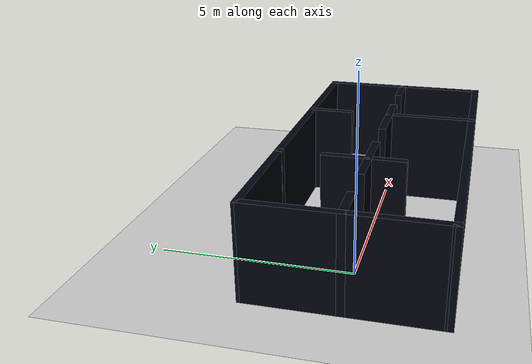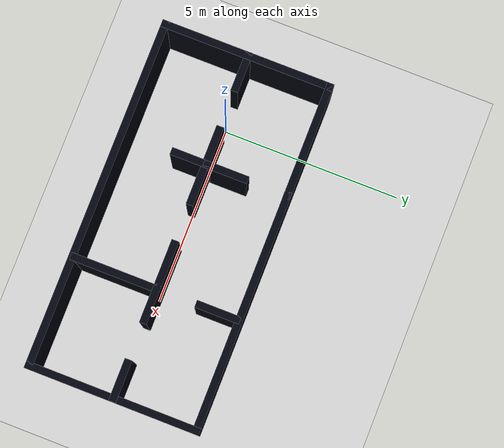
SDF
<?xml version='1.0'?>
<sdf version='1.8'>
  <world name='rooms'>
    <physics name='10ms' type='ignored'>
        <max_step_size>0.01</max_step_size>
        <real_time_factor>1</real_time_factor>
        <real_time_update_rate>100</real_time_update_rate>
    </physics>
    <plugin name='ignition::gazebo::systems::Physics' filename='ignition-gazebo-physics-system' />
    <plugin name='ignition::gazebo::systems::UserCommands' filename='ignition-gazebo-user-commands-system' />
    <plugin name='ignition::gazebo::systems::SceneBroadcaster' filename='ignition-gazebo-scene-broadcaster-system' />
    <plugin name='ignition::gazebo::systems::Contact' filename='ignition-gazebo-contact-system' />
    <light name='sun' type='directional'>
        <cast_shadows>1</cast_shadows>
        <pose>0 0 10 0 -0 0</pose>
        <diffuse>0.8 0.8 0.8 1</diffuse>
        <specular>0.2 0.2 0.2 1</specular>
        <attenuation>
            <range>1000</range>
            <constant>0.90000000000000002</constant>
            <linear>0.01</linear>
            <quadratic>0.001</quadratic>
        </attenuation>
        <direction>-0.5 0.1 -0.9</direction>
        <spot>
            <inner_angle>0</inner_angle>
            <outer_angle>0</outer_angle>
            <falloff>0</falloff>
        </spot>
    </light>
    <gravity>0 0 -9.8</gravity>
    <magnetic_field>6e-06 2.3e-05 -4.2e-05</magnetic_field>
    <atmosphere type='adiabatic' />
    <scene>
        <ambient>0.4 0.4 0.4 1</ambient>
        <background>0.7 0.7 0.7 1</background>
        <shadows>1</shadows>
    </scene>

    <model name='ground_plane'>
        <static>1</static>
        <link name='link'>
            <collision name='collision'>
                <geometry>
                    <plane>
                        <normal>0 0 1</normal>
                        <size>100 100</size>
                    </plane>
                </geometry>
                <surface>
                    <friction>
                        <ode />
                    </friction>
                    <bounce />
                    <contact />
                </surface>
            </collision>
            <visual name='visual'>
                <geometry>
                    <plane>
                        <normal>0 0 1</normal>
                        <size>100 100</size>
                    </plane>
                </geometry>
                <material>
                    <ambient>0.8 0.8 0.8 1</ambient>
                    <diffuse>0.8 0.8 0.8 1</diffuse>
                    <specular>0.8 0.8 0.8 1</specular>
                </material>
                <plugin name='__default__' filename='__default__' />
            </visual>
        </link>
        <plugin name='__default__' filename='__default__' />
        <pose>0 0 0 0 -0 0</pose>
    </model>

    <model name='walls'>
      <static>true</static>
      <link name='Wall_11'>
        <pose>1.35278 1.12391 0 0 0 -1.5708</pose>
        <static>true</static>
        <collision name='collision0'>
          <pose>-1.12127 0 1.25 0 -0 0</pose>
          <geometry>
            <box>
              <size>0.193141 0.2 2.5</size>
            </box>
          </geometry>
        </collision>
        <visual name='visual0'>
          <pose>-1.12127 0 1.25 0 -0 0</pose>
          <geometry>
            <box>
              <size>0.193141 0.2 2.5</size>
            </box>
          </geometry>
          <material>
            <ambient>0.1 0.1 0.1 1</ambient>
            <diffuse>0 0.01 0.05 1</diffuse>
            <specular>0 0.01 0.05 1</specular>
          </material>
        </visual>
        <collision name='collision1'>
          <pose>0.596571 0 1.25 0 -0 0</pose>
          <geometry>
            <box>
              <size>1.24255 0.2 2.5</size>
            </box>
          </geometry>
        </collision>
        <visual name='visual1'>
          <pose>0.596571 0 1.25 0 -0 0</pose>
          <geometry>
            <box>
              <size>1.24255 0.2 2.5</size>
            </box>
          </geometry>
          <material>
            <ambient>0.1 0.1 0.1 1</ambient>
            <diffuse>0 0.01 0.05 1</diffuse>
            <specular>0 0.01 0.05 1</specular>
          </material>
        </visual>
      </link>
      <link name='Wall_13'>
        <pose>4.85079 1.1011 0 0 0 -1.5708</pose>
        <static>true</static>
        <collision name='collision0'>
          <pose>-0.566153 0 1.25 0 -0 0</pose>
          <geometry>
            <box>
              <size>1.22734 0.2 2.5</size>
            </box>
          </geometry>
        </collision>
        <visual name='visual0'>
          <pose>-0.566153 0 1.25 0 -0 0</pose>
          <geometry>
            <box>
              <size>1.22734 0.2 2.5</size>
            </box>
          </geometry>
          <material>
            <ambient>0.1 0.1 0.1 1</ambient>
            <diffuse>0 0.01 0.05 1</diffuse>
            <specular>0 0.01 0.05 1</specular>
          </material>
        </visual>
        <collision name='collision1'>
          <pose>1.11367 0 1.25 0 -0 0</pose>
          <geometry>
            <box>
              <size>0.132306 0.2 2.5</size>
            </box>
          </geometry>
        </collision>
        <visual name='visual1'>
          <pose>1.11367 0 1.25 0 -0 0</pose>
          <geometry>
            <box>
              <size>0.132306 0.2 2.5</size>
            </box>
          </geometry>
          <material>
            <ambient>0.1 0.1 0.1 1</ambient>
            <diffuse>0 0.01 0.05 1</diffuse>
            <specular>0 0.01 0.05 1</specular>
          </material>
        </visual>
      </link>
      <link name='Wall_15'>
        <pose>4.866 -1.19542 0 0 0 -1.5708</pose>
        <static>true</static>
        <collision name='collision0'>
          <pose>0 0 1.25 0 -0 0</pose>
          <geometry>
            <box>
              <size>2.48131 0.2 2.5</size>
            </box>
          </geometry>
        </collision>
        <visual name='visual0'>
          <pose>0 0 1.25 0 -0 0</pose>
          <geometry>
            <box>
              <size>2.48131 0.2 2.5</size>
            </box>
          </geometry>
          <material>
            <ambient>0.1 0.1 0.1 1</ambient>
            <diffuse>0 0.01 0.05 1</diffuse>
            <specular>0 0.01 0.05 1</specular>
          </material>
        </visual>
      </link>
      <link name='Wall_17'>
        <pose>1.35278 -0.450191 0 0 0 -1.5708</pose>
        <static>true</static>
        <collision name='collision0'>
          <pose>0 0 1.25 0 -0 0</pose>
          <geometry>
            <box>
              <size>1.11252 0.2 2.5</size>
            </box>
          </geometry>
        </collision>
        <visual name='visual0'>
          <pose>0 0 1.25 0 -0 0</pose>
          <geometry>
            <box>
              <size>1.11252 0.2 2.5</size>
            </box>
          </geometry>
          <material>
            <ambient>0.1 0.1 0.1 1</ambient>
            <diffuse>0 0.01 0.05 1</diffuse>
            <specular>0 0.01 0.05 1</specular>
          </material>
        </visual>
      </link>
      <link name='Wall_2'>
        <pose>3.08411 -2.38753 0 0 -0 0</pose>
        <static>true</static>
        <collision name='collision0'>
          <pose>0 0 1.25 0 -0 0</pose>
          <geometry>
            <box>
              <size>9.8344 0.2 2.5</size>
            </box>
          </geometry>
        </collision>
        <visual name='visual0'>
          <pose>0 0 1.25 0 -0 0</pose>
          <geometry>
            <box>
              <size>9.8344 0.2 2.5</size>
            </box>
          </geometry>
          <material>
            <ambient>0.1 0.1 0.1 1</ambient>
            <diffuse>0 0.01 0.05 1</diffuse>
            <specular>0 0.01 0.05 1</specular>
          </material>
        </visual>
      </link>
      <link name='Wall_3'>
        <pose>7.90203 -0.067224 0 0 -0 1.57048</pose>
        <static>true</static>
        <collision name='collision0'>
          <pose>0 0 1.25 0 -0 0</pose>
          <geometry>
            <box>
              <size>4.84069 0.2 2.5</size>
            </box>
          </geometry>
        </collision>
        <visual name='visual0'>
          <pose>0 0 1.25 0 -0 0</pose>
          <geometry>
            <box>
              <size>4.84069 0.2 2.5</size>
            </box>
          </geometry>
          <material>
            <ambient>0.1 0.1 0.1 1</ambient>
            <diffuse>0 0.01 0.05 1</diffuse>
            <specular>0 0.01 0.05 1</specular>
          </material>
        </visual>
      </link>
      <link name='Wall_4'>
        <pose>3.08528 2.25309 0 0 -0 3.14159</pose>
        <static>true</static>
        <collision name='collision0'>
          <pose>0 0 1.25 0 -0 0</pose>
          <geometry>
            <box>
              <size>9.83495 0.2 2.5</size>
            </box>
          </geometry>
        </collision>
        <visual name='visual0'>
          <pose>0 0 1.25 0 -0 0</pose>
          <geometry>
            <box>
              <size>9.83495 0.2 2.5</size>
            </box>
          </geometry>
          <material>
            <ambient>0.1 0.1 0.1 1</ambient>
            <diffuse>0 0.01 0.05 1</diffuse>
            <specular>0 0.01 0.05 1</specular>
          </material>
        </visual>
      </link>
      <link name='Wall_5'>
        <pose>-1.73265 -0.067224 0 0 0 -1.57099</pose>
        <static>true</static>
        <collision name='collision0'>
          <pose>0 0 1.25 0 -0 0</pose>
          <geometry>
            <box>
              <size>4.84085 0.2 2.5</size>
            </box>
          </geometry>
        </collision>
        <visual name='visual0'>
          <pose>0 0 1.25 0 -0 0</pose>
          <geometry>
            <box>
              <size>4.84085 0.2 2.5</size>
            </box>
          </geometry>
          <material>
            <ambient>0.1 0.1 0.1 1</ambient>
            <diffuse>0 0.01 0.05 1</diffuse>
            <specular>0 0.01 0.05 1</specular>
          </material>
        </visual>
      </link>
      <link name='Wall_9'>
        <pose>3.07897 -0.039554 0 0 -0 0</pose>
        <static>true</static>
        <collision name='collision0'>
          <pose>-4.35313 0 1.25 0 -0 0</pose>
          <geometry>
            <box>
              <size>1.12088 0.2 2.5</size>
            </box>
          </geometry>
        </collision>
        <visual name='visual0'>
          <pose>-4.35313 0 1.25 0 -0 0</pose>
          <geometry>
            <box>
              <size>1.12088 0.2 2.5</size>
            </box>
          </geometry>
          <material>
            <ambient>0.1 0.1 0.1 1</ambient>
            <diffuse>0 0.01 0.05 1</diffuse>
            <specular>0 0.01 0.05 1</specular>
          </material>
        </visual>
        <collision name='collision1'>
          <pose>-1.68057 0 1.25 0 -0 0</pose>
          <geometry>
            <box>
              <size>2.22425 0.2 2.5</size>
            </box>
          </geometry>
        </collision>
        <visual name='visual1'>
          <pose>-1.68057 0 1.25 0 -0 0</pose>
          <geometry>
            <box>
              <size>2.22425 0.2 2.5</size>
            </box>
          </geometry>
          <material>
            <ambient>0.1 0.1 0.1 1</ambient>
            <diffuse>0 0.01 0.05 1</diffuse>
            <specular>0 0.01 0.05 1</specular>
          </material>
        </visual>
        <collision name='collision2'>
          <pose>1.58931 0 1.25 0 -0 0</pose>
          <geometry>
            <box>
              <size>2.31551 0.2 2.5</size>
            </box>
          </geometry>
        </collision>
        <visual name='visual2'>
          <pose>1.58931 0 1.25 0 -0 0</pose>
          <geometry>
            <box>
              <size>2.31551 0.2 2.5</size>
            </box>
          </geometry>
          <material>
            <ambient>0.1 0.1 0.1 1</ambient>
            <diffuse>0 0.01 0.05 1</diffuse>
            <specular>0 0.01 0.05 1</specular>
          </material>
        </visual>
        <collision name='collision3'>
          <pose>4.33032 0 1.25 0 -0 0</pose>
          <geometry>
            <box>
              <size>1.1665 0.2 2.5</size>
            </box>
          </geometry>
        </collision>
        <visual name='visual3'>
          <pose>4.33032 0 1.25 0 -0 0</pose>
          <geometry>
            <box>
              <size>1.1665 0.2 2.5</size>
            </box>
          </geometry>
          <material>
            <ambient>0.1 0.1 0.1 1</ambient>
            <diffuse>0 0.01 0.05 1</diffuse>
            <specular>0 0.01 0.05 1</specular>
          </material>
        </visual>
      </link>
    </model>
  </world>
</sdf>
